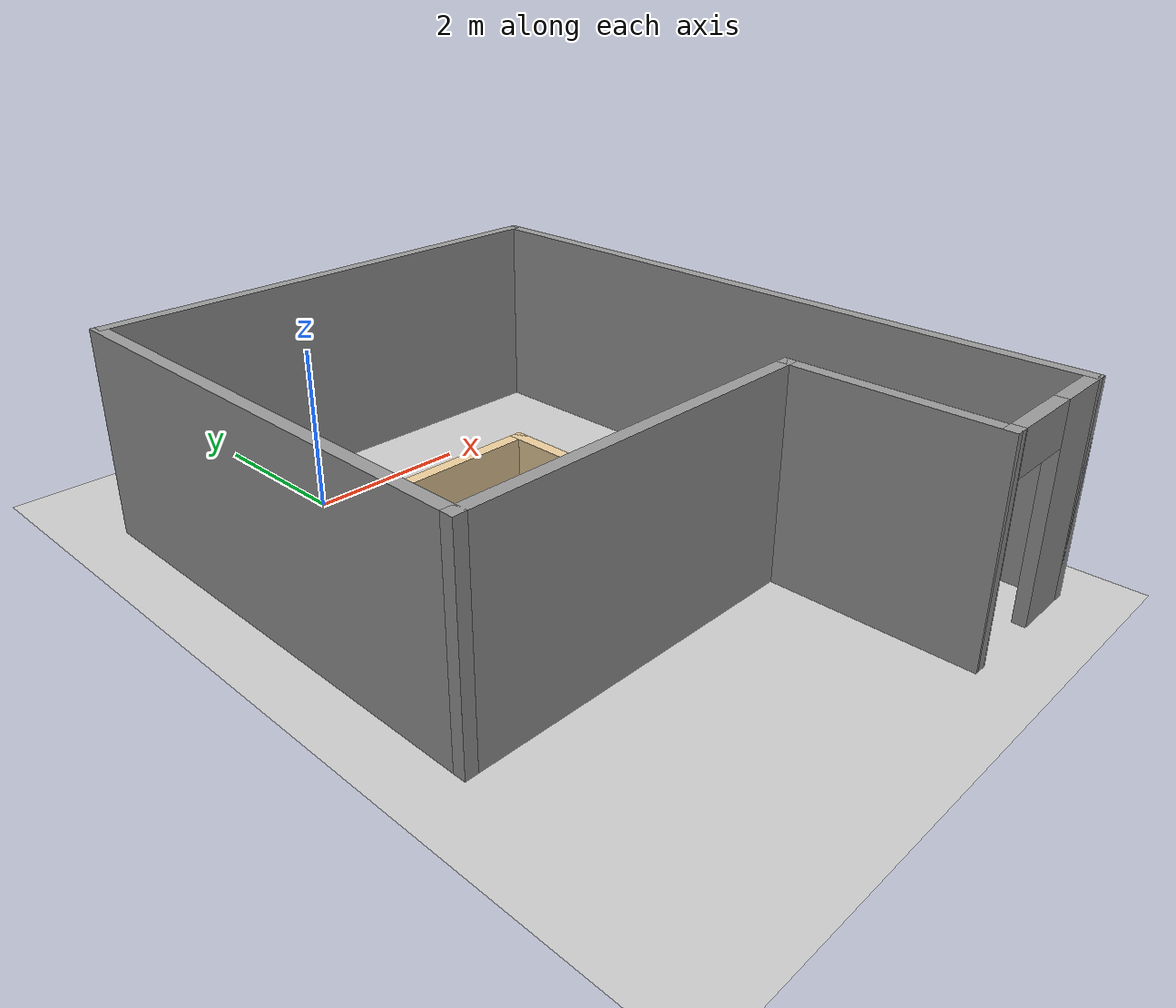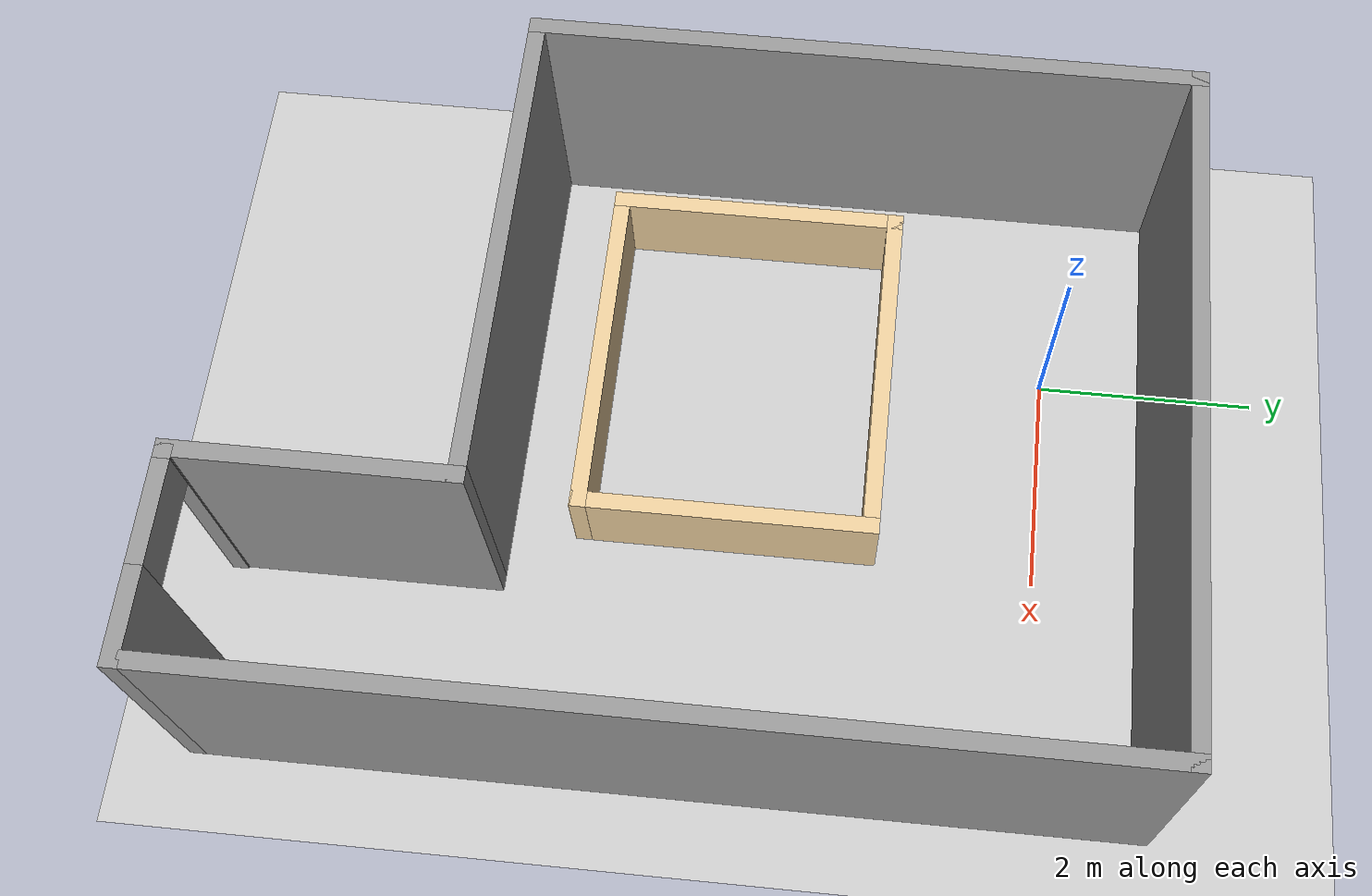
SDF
<sdf version="1.7">
 <world name="default">
  <light name="sun" type="directional">
   <pose>0 0 10 0 -0 0</pose>
   <diffuse>0.8 0.8 0.8 1</diffuse>
   <specular>0.2 0.2 0.2 1</specular>
   <attenuation>
    <range>1000</range>
    <constant>0.9</constant>
    <linear>0.01</linear>
    <quadratic>0.001</quadratic>
   </attenuation>
   <direction>-0.5 0.1 -0.9</direction>
   <spot><inner_angle>0</inner_angle><outer_angle>0</outer_angle><falloff>0</falloff></spot>
  </light>
  <model name="ground_plane">
   <static>1</static>
   <link name="link">
    <collision name="collision">
     <geometry><plane><normal>0 0 1</normal><size>100 100</size></plane></geometry>
     <surface><friction><ode><mu>100</mu><mu2>50</mu2></ode></friction></surface>
    </collision>
    <visual name="visual">
     <cast_shadows>0</cast_shadows>
     <geometry><plane><normal>0 0 1</normal><size>100 100</size></plane></geometry>
     <material>
      <script><uri>file://media/materials/scripts/gazebo.material</uri><name>Gazebo/Grey</name></script>
     </material>
    </visual>
   </link>
  </model>
  <gravity>0 0 -9.8</gravity>
  <magnetic_field>6e-06 2.3e-05 -4.2e-05</magnetic_field>
  <atmosphere type="adiabatic"/>
  <physics type="ode">
   <max_step_size>0.001</max_step_size>
   <real_time_factor>1</real_time_factor>
   <real_time_update_rate>1000</real_time_update_rate>
  </physics>
  <scene><ambient>0.4 0.4 0.4 1</ambient><background>0.7 0.7 0.7 1</background><shadows>1</shadows></scene>
  <audio><device>default</device></audio>
  <spherical_coordinates>
   <surface_model>EARTH_WGS84</surface_model>
   <latitude_deg>0</latitude_deg>
   <longitude_deg>0</longitude_deg>
   <elevation>0</elevation>
   <heading_deg>0</heading_deg>
  </spherical_coordinates>
  <model name="robot_lab">
   <pose>-2.75498 -3.09276 0 0 -0 0</pose>
   <link name="Wall_0">
    <collision name="Wall_0_Collision">
     <geometry><box><size>4.5 0.15 2.5</size></box></geometry>
     <pose>0 0 1.25 0 -0 0</pose>
    </collision>
    <visual name="Wall_0_Visual">
     <pose>0 0 1.25 0 -0 0</pose>
     <geometry><box><size>4.5 0.15 2.5</size></box></geometry>
     <material>
      <script><uri>file://media/materials/scripts/gazebo.material</uri><name>Gazebo/Grey</name></script>
      <ambient>1 1 1 1</ambient>
     </material>
     <meta><layer>0</layer></meta>
    </visual>
    <pose>3.01682 -1.75 0 0 -0 3.14159</pose>
   </link>
   <link name="Wall_11">
    <collision name="Wall_11_Collision">
     <geometry><box><size>2.75 0.15 0.8</size></box></geometry>
     <pose>0 0 0.4 0 -0 0</pose>
    </collision>
    <visual name="Wall_11_Visual">
     <pose>0 0 0.4 0 -0 0</pose>
     <geometry><box><size>2.75 0.15 0.8</size></box></geometry>
     <material>
      <script><uri>file://media/materials/scripts/gazebo.material</uri><name>Gazebo/Grey</name></script>
      <ambient>0.921569 0.807843 0.615686 1</ambient>
     </material>
     <meta><layer>0</layer></meta>
    </visual>
    <pose>4.62318 0.283505 0 0 -0 -1.5708</pose>
   </link>
   <link name="Wall_12">
    <collision name="Wall_12_Collision">
     <geometry><box><size>3.25 0.15 0.8</size></box></geometry>
     <pose>0 0 0.4 0 -0 0</pose>
    </collision>
    <visual name="Wall_12_Visual">
     <pose>0 0 0.4 0 -0 0</pose>
     <geometry><box><size>3.25 0.15 0.8</size></box></geometry>
     <material>
      <script><uri>file://media/materials/scripts/gazebo.material</uri><name>Gazebo/Grey</name></script>
      <ambient>0.921569 0.807843 0.615686 1</ambient>
     </material>
     <meta><layer>0</layer></meta>
    </visual>
    <pose>3.07318 -1.01649 0 0 -0 3.14159</pose>
   </link>
   <link name="Wall_13">
    <collision name="Wall_13_Collision">
     <geometry><box><size>2.75 0.15 0.8</size></box></geometry>
     <pose>0 0 0.4 0 -0 0</pose>
    </collision>
    <visual name="Wall_13_Visual">
     <pose>0 0 0.4 0 -0 0</pose>
     <geometry><box><size>2.75 0.15 0.8</size></box></geometry>
     <material>
      <script><uri>file://media/materials/scripts/gazebo.material</uri><name>Gazebo/Grey</name></script>
      <ambient>0.921569 0.807843 0.615686 1</ambient>
     </material>
     <meta><layer>0</layer></meta>
    </visual>
    <pose>1.52318 0.283505 0 0 -0 1.5708</pose>
   </link>
   <link name="Wall_14">
    <collision name="Wall_14_Collision">
     <geometry><box><size>3.25 0.15 0.8</size></box></geometry>
     <pose>0 0 0.4 0 -0 0</pose>
    </collision>
    <visual name="Wall_14_Visual">
     <pose>0 0 0.4 0 -0 0</pose>
     <geometry><box><size>3.25 0.15 0.8</size></box></geometry>
     <material>
      <script><uri>file://media/materials/scripts/gazebo.material</uri><name>Gazebo/Grey</name></script>
      <ambient>0.921569 0.807843 0.615686 1</ambient>
     </material>
     <meta><layer>0</layer></meta>
    </visual>
    <pose>3.07318 1.5835 0 0 -0 0</pose>
   </link>
   <link name="Wall_2">
    <collision name="Wall_2_Collision">
     <geometry><box><size>6 0.15 2.5</size></box></geometry>
     <pose>0 0 1.25 0 -0 0</pose>
    </collision>
    <visual name="Wall_2_Visual">
     <pose>0 0 1.25 0 -0 0</pose>
     <geometry><box><size>6 0.15 2.5</size></box></geometry>
     <material>
      <script><uri>file://media/materials/scripts/gazebo.material</uri><name>Gazebo/Grey</name></script>
      <ambient>1 1 1 1</ambient>
     </material>
     <meta><layer>0</layer></meta>
    </visual>
    <pose>0.841823 1.175 0 0 -0 1.5708</pose>
   </link>
   <link name="Wall_3">
    <collision name="Wall_3_Collision">
     <geometry><box><size>6.25 0.15 2.5</size></box></geometry>
     <pose>0 0 1.25 0 -0 0</pose>
    </collision>
    <visual name="Wall_3_Visual">
     <pose>0 0 1.25 0 -0 0</pose>
     <geometry><box><size>6.25 0.15 2.5</size></box></geometry>
     <material>
      <script><uri>file://media/materials/scripts/gazebo.material</uri><name>Gazebo/Grey</name></script>
      <ambient>1 1 1 1</ambient>
     </material>
     <meta><layer>0</layer></meta>
    </visual>
    <pose>3.89182 4.1 0 0 -0 0</pose>
   </link>
   <link name="Wall_4">
    <collision name="Wall_4_Collision">
     <geometry><box><size>8.35 0.15 2.5</size></box></geometry>
     <pose>0 0 1.25 0 -0 0</pose>
    </collision>
    <visual name="Wall_4_Visual">
     <pose>0 0 1.25 0 -0 0</pose>
     <geometry><box><size>8.35 0.15 2.5</size></box></geometry>
     <material>
      <script><uri>file://media/materials/scripts/gazebo.material</uri><name>Gazebo/Grey</name></script>
      <ambient>1 1 1 1</ambient>
     </material>
     <meta><layer>0</layer></meta>
    </visual>
    <pose>6.94182 0 0 0 -0 -1.5708</pose>
   </link>
   <link name="Wall_8">
    <collision name="Wall_8_Collision">
     <geometry><box><size>2.5 0.15 2.5</size></box></geometry>
     <pose>0 0 1.25 0 -0 0</pose>
    </collision>
    <visual name="Wall_8_Visual">
     <pose>0 0 1.25 0 -0 0</pose>
     <geometry><box><size>2.5 0.15 2.5</size></box></geometry>
     <material>
      <script><uri>file://media/materials/scripts/gazebo.material</uri><name>Gazebo/Grey</name></script>
      <ambient>1 1 1 1</ambient>
     </material>
     <meta><layer>0</layer></meta>
    </visual>
    <pose>5.19182 -2.925 0 0 -0 -1.5708</pose>
   </link>
   <link name="Wall_9">
    <pose>6.06682 -4.1 0 0 -0 0</pose>
    <visual name="Wall_9_Visual_0">
     <pose>-0.866804 0 1.25 0 -0 0</pose>
     <geometry><box><size>0.166391 0.15 2.5</size></box></geometry>
     <material>
      <script><uri>file://media/materials/scripts/gazebo.material</uri><name>Gazebo/Grey</name></script>
      <ambient>1 1 1 1</ambient>
     </material>
     <meta><layer>0</layer></meta>
    </visual>
    <collision name="Wall_9_Collision_0">
     <geometry><box><size>0.166391 0.15 2.5</size></box></geometry>
     <pose>-0.866804 0 1.25 0 -0 0</pose>
    </collision>
    <visual name="Wall_9_Visual_1">
     <pose>0.533196 0 1.25 0 -0 0</pose>
     <geometry><box><size>0.833609 0.15 2.5</size></box></geometry>
     <material>
      <script><uri>file://media/materials/scripts/gazebo.material</uri><name>Gazebo/Grey</name></script>
      <ambient>1 1 1 1</ambient>
     </material>
     <meta><layer>0</layer></meta>
    </visual>
    <collision name="Wall_9_Collision_1">
     <geometry><box><size>0.833609 0.15 2.5</size></box></geometry>
     <pose>0.533196 0 1.25 0 -0 0</pose>
    </collision>
    <visual name="Wall_9_Visual_2">
     <pose>-0.333609 0 2.25 0 -0 0</pose>
     <geometry><box><size>0.9 0.15 0.5</size></box></geometry>
     <material>
      <script><uri>file://media/materials/scripts/gazebo.material</uri><name>Gazebo/Grey</name></script>
      <ambient>1 1 1 1</ambient>
     </material>
     <meta><layer>0</layer></meta>
    </visual>
    <collision name="Wall_9_Collision_2">
     <geometry><box><size>0.9 0.15 0.5</size></box></geometry>
     <pose>-0.333609 0 2.25 0 -0 0</pose>
    </collision>
   </link>
   <static>1</static>
  </model>
 </world>
</sdf>
